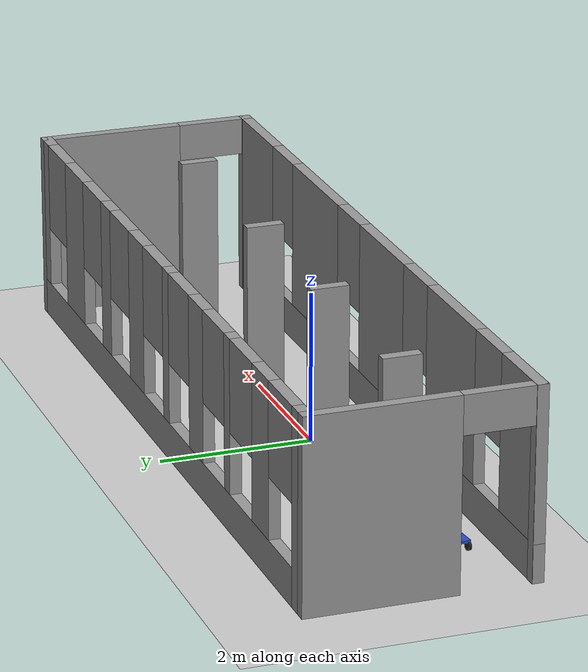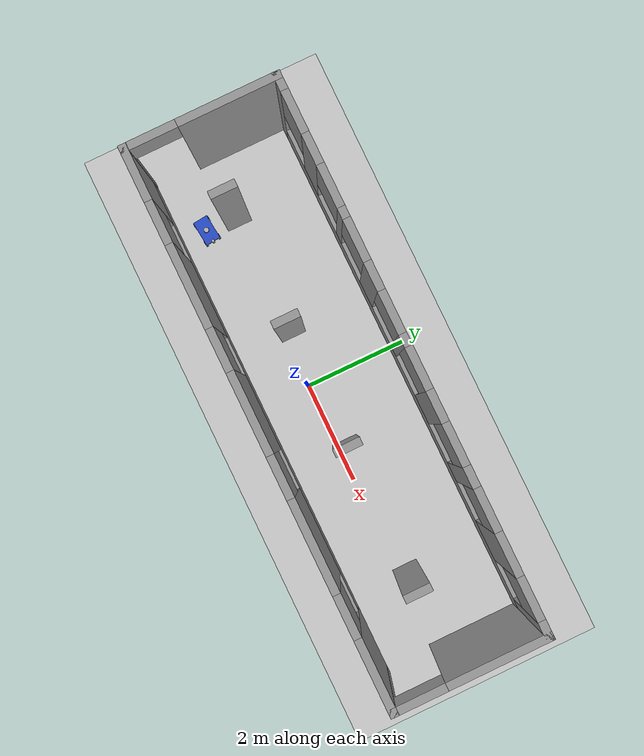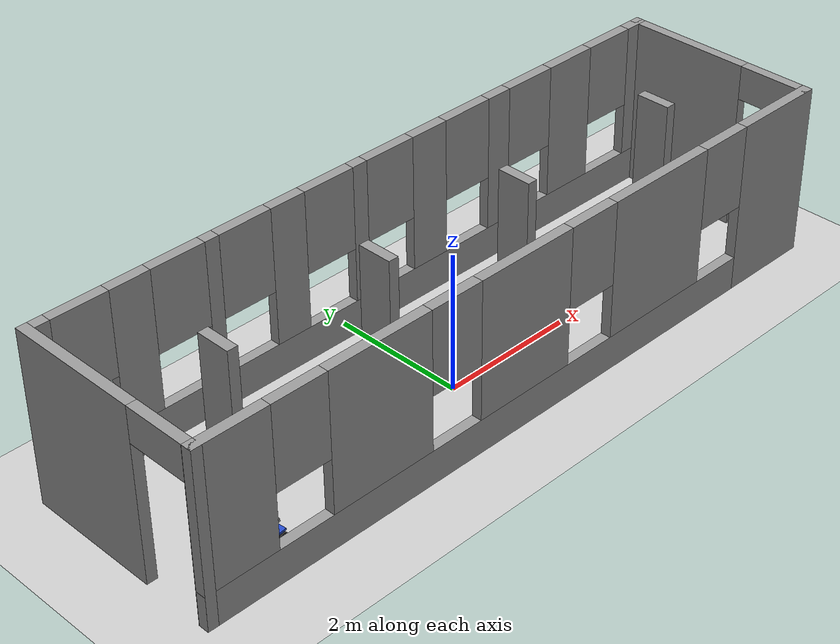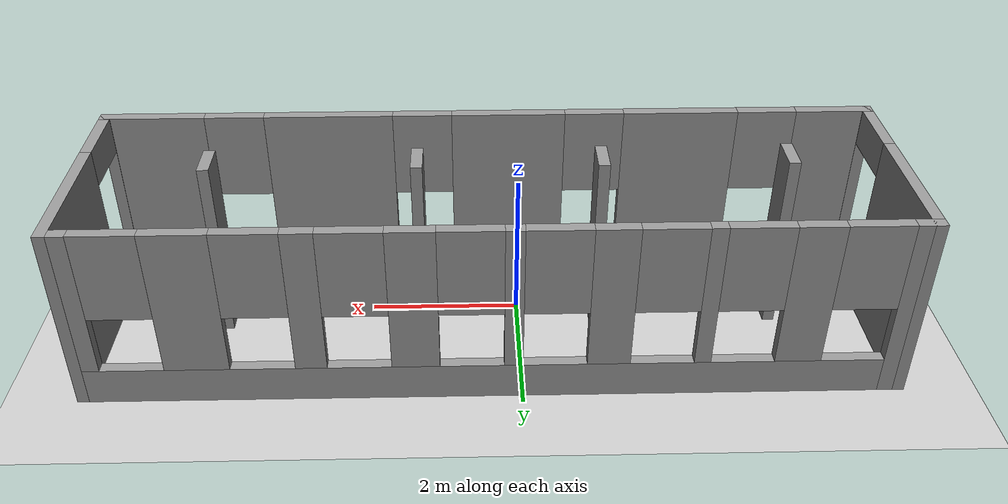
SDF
<sdf version="1.7">
 <world name="default">
  <light name="sun" type="directional">
   <pose>0 0 10 0 -0 0</pose>
   <diffuse>0.8 0.8 0.8 1</diffuse>
   <specular>0.2 0.2 0.2 1</specular>
   <attenuation>
    <range>1000</range>
    <constant>0.9</constant>
    <linear>0.01</linear>
    <quadratic>0.001</quadratic>
   </attenuation>
   <direction>-0.5 0.1 -0.9</direction>
   <spot><inner_angle>0</inner_angle><outer_angle>0</outer_angle><falloff>0</falloff></spot>
  </light>
  <model name="ground_plane">
   <static>1</static>
   <link name="link">
    <collision name="collision">
     <geometry><plane><normal>0 0 1</normal><size>100 100</size></plane></geometry>
     <surface><friction><ode><mu>100</mu><mu2>50</mu2></ode></friction></surface>
    </collision>
    <visual name="visual">
     <cast_shadows>0</cast_shadows>
     <geometry><plane><normal>0 0 1</normal><size>100 100</size></plane></geometry>
     <material>
      <script><uri>file://media/materials/scripts/gazebo.material</uri><name>Gazebo/Grey</name></script>
     </material>
    </visual>
   </link>
  </model>
  <gravity>0 0 -9.8</gravity>
  <magnetic_field>6e-06 2.3e-05 -4.2e-05</magnetic_field>
  <atmosphere type="adiabatic"/>
  <physics type="ode">
   <max_step_size>0.001</max_step_size>
   <real_time_factor>1</real_time_factor>
   <real_time_update_rate>1000</real_time_update_rate>
  </physics>
  <scene><ambient>0.4 0.4 0.4 1</ambient><background>0.7 0.7 0.7 1</background><shadows>1</shadows></scene>
  <audio><device>default</device></audio>
  <spherical_coordinates>
   <surface_model>EARTH_WGS84</surface_model>
   <latitude_deg>0</latitude_deg>
   <longitude_deg>0</longitude_deg>
   <elevation>0</elevation>
   <heading_deg>0</heading_deg>
  </spherical_coordinates>
  <model name="rover">
   <link name="base_footprint">
    <inertial>
     <pose>0.011538 0 0.048154 0 -0 0</pose>
     <mass>3.25</mass>
     <inertia>
      <ixx>0.0515339</ixx>
      <ixy>0</ixy>
      <ixz>-0.00156923</ixz>
      <iyy>0.110476</iyy>
      <iyz>0</iyz>
      <izz>0.0600523</izz>
     </inertia>
    </inertial>
    <collision name="base_footprint_fixed_joint_lump__base_link_collision">
     <pose>0 0 0.045 0 -0 0</pose>
     <geometry><box><size>0.5 0.3 0.03</size></box></geometry>
    </collision>
    <collision name="base_footprint_fixed_joint_lump__camera_link_collision_1">
     <pose>0.25 0 0.11 0 -0 0</pose>
     <geometry><box><size>0.05 0.05 0.03</size></box></geometry>
    </collision>
    <collision name="base_footprint_fixed_joint_lump__laser_link_collision_2">
     <pose>0 0 0.08 0 -0 0</pose>
     <geometry><cylinder><length>0.05</length><radius>0.05</radius></cylinder></geometry>
    </collision>
    <visual name="base_footprint_fixed_joint_lump__base_link_visual">
     <pose>0 0 0.045 0 -0 0</pose>
     <geometry><box><size>0.5 0.3 0.03</size></box></geometry>
     <material>
      <script><name>Gazebo/Blue</name><uri>file://media/materials/scripts/gazebo.material</uri></script>
     </material>
    </visual>
    <visual name="base_footprint_fixed_joint_lump__camera_mount_visual_1">
     <pose>0.25 0 0.08 0 -0 0</pose>
     <geometry><box><size>0.08 0.04 0.04</size></box></geometry>
    </visual>
    <visual name="base_footprint_fixed_joint_lump__camera_link_visual_2">
     <pose>0.25 0 0.11 0 -0 0</pose>
     <geometry><box><size>0.05 0.05 0.03</size></box></geometry>
    </visual>
    <visual name="base_footprint_fixed_joint_lump__laser_link_visual_3">
     <pose>0 0 0.08 0 -0 0</pose>
     <geometry><cylinder><length>0.05</length><radius>0.05</radius></cylinder></geometry>
    </visual>
    <sensor name="camera" type="camera">
     <update_rate>30</update_rate>
     <camera>
      <horizontal_fov>1.0472</horizontal_fov>
      <image><width>640</width><height>480</height><format>R8G8B8</format></image>
      <clip><near>0.05</near><far>100</far></clip>
      <noise><type>gaussian</type><mean>0</mean><stddev>0.007</stddev></noise>
     </camera>
     <plugin name="camera_controller" filename="libgazebo_ros_camera.so">
      <ros><namespace>/</namespace></ros>
      <camera_name>rover_camera</camera_name>
      <frame_name>camera_link</frame_name>
      <hack_baseline>0.07</hack_baseline>
     </plugin>
     <pose>0.25 0 0.11 0 -0 0</pose>
    </sensor>
    <sensor name="laser" type="ray">
     <visualize>1</visualize>
     <update_rate>20</update_rate>
     <ray>
      <scan>
       <horizontal>
        <samples>720</samples>
        <resolution>1</resolution>
        <min_angle>-0.785</min_angle>
        <max_angle>0.785</max_angle>
       </horizontal>
       <vertical><samples>1</samples><min_angle>0</min_angle><max_angle>0</max_angle></vertical>
      </scan>
      <range><min>0.1</min><max>10</max><resolution>0.01</resolution></range>
      <noise><type>gaussian</type><mean>0</mean><stddev>0.01</stddev></noise>
     </ray>
     <plugin name="gazebo_ros_laser_controller" filename="libgazebo_ros_ray_sensor.so">
      <ros><remapping>~/out:=scan</remapping></ros>
      <topicName>/scan</topicName>
      <frameName>laser_link</frameName>
      <output_type>sensor_msgs/LaserScan</output_type>
     </plugin>
     <pose>0 0 0.08 0 -0 0</pose>
    </sensor>
   </link>
   <joint name="front_left_wheel_joint" type="revolute">
    <pose relative_to="base_footprint">0.2 -0.14 -0.03 1.5708 -0 0</pose>
    <parent>base_footprint</parent>
    <child>front_left_wheel</child>
    <axis>
     <xyz>0 0 1</xyz>
     <limit><lower>-1e+16</lower><upper>1e+16</upper></limit>
     <dynamics>
      <damping>0.1</damping>
      <friction>0.5</friction>
      <spring_reference>0</spring_reference>
      <spring_stiffness>0</spring_stiffness>
     </dynamics>
    </axis>
   </joint>
   <link name="front_left_wheel">
    <pose relative_to="front_left_wheel_joint">0 0 0 0 -0 0</pose>
    <inertial>
     <mass>0.3</mass>
     <inertia><ixx>0.0008</ixx><ixy>0</ixy><ixz>0</ixz><iyy>0.0008</iyy><iyz>0</iyz><izz>0.0008</izz></inertia>
    </inertial>
    <collision name="front_left_wheel_collision">
     <geometry><cylinder><length>0.04</length><radius>0.06</radius></cylinder></geometry>
    </collision>
    <visual name="front_left_wheel_visual">
     <geometry><cylinder><length>0.04</length><radius>0.06</radius></cylinder></geometry>
     <material>
      <script><name>Gazebo/Black</name><uri>file://media/materials/scripts/gazebo.material</uri></script>
     </material>
    </visual>
   </link>
   <joint name="front_right_wheel_joint" type="revolute">
    <pose relative_to="base_footprint">0.2 0.14 -0.03 1.5708 -0 0</pose>
    <parent>base_footprint</parent>
    <child>front_right_wheel</child>
    <axis>
     <xyz>0 0 1</xyz>
     <limit><lower>-1e+16</lower><upper>1e+16</upper></limit>
     <dynamics>
      <damping>0.1</damping>
      <friction>0.5</friction>
      <spring_reference>0</spring_reference>
      <spring_stiffness>0</spring_stiffness>
     </dynamics>
    </axis>
   </joint>
   <link name="front_right_wheel">
    <pose relative_to="front_right_wheel_joint">0 0 0 0 -0 0</pose>
    <inertial>
     <mass>0.3</mass>
     <inertia><ixx>0.0008</ixx><ixy>0</ixy><ixz>0</ixz><iyy>0.0008</iyy><iyz>0</iyz><izz>0.0008</izz></inertia>
    </inertial>
    <collision name="front_right_wheel_collision">
     <geometry><cylinder><length>0.04</length><radius>0.06</radius></cylinder></geometry>
    </collision>
    <visual name="front_right_wheel_visual">
     <geometry><cylinder><length>0.04</length><radius>0.06</radius></cylinder></geometry>
     <material>
      <script><name>Gazebo/Black</name><uri>file://media/materials/scripts/gazebo.material</uri></script>
     </material>
    </visual>
   </link>
   <joint name="rear_left_wheel_joint" type="revolute">
    <pose relative_to="base_footprint">-0.2 0.14 -0.03 1.5708 -0 0</pose>
    <parent>base_footprint</parent>
    <child>rear_left_wheel</child>
    <axis>
     <xyz>0 0 1</xyz>
     <limit><lower>-1e+16</lower><upper>1e+16</upper></limit>
     <dynamics>
      <damping>0.1</damping>
      <friction>0.5</friction>
      <spring_reference>0</spring_reference>
      <spring_stiffness>0</spring_stiffness>
     </dynamics>
    </axis>
   </joint>
   <link name="rear_left_wheel">
    <pose relative_to="rear_left_wheel_joint">0 0 0 0 -0 0</pose>
    <inertial>
     <mass>0.3</mass>
     <inertia><ixx>0.0008</ixx><ixy>0</ixy><ixz>0</ixz><iyy>0.0008</iyy><iyz>0</iyz><izz>0.0008</izz></inertia>
    </inertial>
    <collision name="rear_left_wheel_collision">
     <geometry><cylinder><length>0.04</length><radius>0.06</radius></cylinder></geometry>
    </collision>
    <visual name="rear_left_wheel_visual">
     <geometry><cylinder><length>0.04</length><radius>0.06</radius></cylinder></geometry>
     <material>
      <script><name>Gazebo/Black</name><uri>file://media/materials/scripts/gazebo.material</uri></script>
     </material>
    </visual>
   </link>
   <joint name="rear_right_wheel_joint" type="revolute">
    <pose relative_to="base_footprint">-0.2 -0.14 -0.03 1.5708 -0 0</pose>
    <parent>base_footprint</parent>
    <child>rear_right_wheel</child>
    <axis>
     <xyz>0 0 1</xyz>
     <limit><lower>-1e+16</lower><upper>1e+16</upper></limit>
     <dynamics>
      <damping>0.1</damping>
      <friction>0.5</friction>
      <spring_reference>0</spring_reference>
      <spring_stiffness>0</spring_stiffness>
     </dynamics>
    </axis>
   </joint>
   <link name="rear_right_wheel">
    <pose relative_to="rear_right_wheel_joint">0 0 0 0 -0 0</pose>
    <inertial>
     <mass>0.3</mass>
     <inertia><ixx>0.0008</ixx><ixy>0</ixy><ixz>0</ixz><iyy>0.0008</iyy><iyz>0</iyz><izz>0.0008</izz></inertia>
    </inertial>
    <collision name="rear_right_wheel_collision">
     <geometry><cylinder><length>0.04</length><radius>0.06</radius></cylinder></geometry>
    </collision>
    <visual name="rear_right_wheel_visual">
     <geometry><cylinder><length>0.04</length><radius>0.06</radius></cylinder></geometry>
     <material>
      <script><name>Gazebo/Black</name><uri>file://media/materials/scripts/gazebo.material</uri></script>
     </material>
    </visual>
   </link>
   <plugin name="diff_drive_controller" filename="libgazebo_ros_diff_drive.so">
    <ros><namespace>/</namespace></ros>
    <update_rate>20.0</update_rate>
    <left_joint>front_left_wheel_joint</left_joint>
    <right_joint>front_right_wheel_joint</right_joint>
    <wheel_separation>0.4</wheel_separation>
    <wheel_diameter>0.12</wheel_diameter>
    <command_topic>cmd_vel</command_topic>
    <odometry_topic>odom</odometry_topic>
    <odometry_frame>odom</odometry_frame>
    <robot_base_frame>base_footprint</robot_base_frame>
    <publish_odom>1</publish_odom>
    <publish_odom_tf>1</publish_odom_tf>
    <publish_wheel_tf>1</publish_wheel_tf>
    <legacy_mode>0</legacy_mode>
   </plugin>
   <static>0</static>
   <plugin name="joint_state_controller" filename="libgazebo_ros_joint_state_publisher.so">
    <joint_name>front_left_wheel_joint</joint_name>
    <joint_name>front_right_wheel_joint</joint_name>
    <joint_name>rear_left_wheel_joint</joint_name>
    <joint_name>rear_right_wheel_joint</joint_name>
    <update_rate>50</update_rate>
   </plugin>
   <pose>-3.55947 -0.470713 0.09 0 -0 0.100466</pose>
  </model>
  <model name="Warehouse">
   <pose>0.37041 0.684188 0 0 -0 0</pose>
   <link name="Wall_0">
    <pose>-5.175 -0.3075 0 0 -0 1.5708</pose>
    <visual name="Wall_0_Visual_0">
     <pose>-1.42278 0 1.25 0 -0 0</pose>
     <geometry><box><size>0.154444 0.15 2.5</size></box></geometry>
     <material>
      <script><uri>file://media/materials/scripts/gazebo.material</uri><name>Gazebo/Grey</name></script>
      <ambient>1 1 1 1</ambient>
     </material>
     <meta><layer>0</layer></meta>
    </visual>
    <collision name="Wall_0_Collision_0">
     <geometry><box><size>0.154444 0.15 2.5</size></box></geometry>
     <pose>-1.42278 0 1.25 0 -0 0</pose>
    </collision>
    <visual name="Wall_0_Visual_1">
     <pose>0.527222 0 1.25 0 -0 0</pose>
     <geometry><box><size>1.94556 0.15 2.5</size></box></geometry>
     <material>
      <script><uri>file://media/materials/scripts/gazebo.material</uri><name>Gazebo/Grey</name></script>
      <ambient>1 1 1 1</ambient>
     </material>
     <meta><layer>0</layer></meta>
    </visual>
    <collision name="Wall_0_Collision_1">
     <geometry><box><size>1.94556 0.15 2.5</size></box></geometry>
     <pose>0.527222 0 1.25 0 -0 0</pose>
    </collision>
    <visual name="Wall_0_Visual_2">
     <pose>-0.895556 0 2.25 0 -0 0</pose>
     <geometry><box><size>0.9 0.15 0.5</size></box></geometry>
     <material>
      <script><uri>file://media/materials/scripts/gazebo.material</uri><name>Gazebo/Grey</name></script>
      <ambient>1 1 1 1</ambient>
     </material>
     <meta><layer>0</layer></meta>
    </visual>
    <collision name="Wall_0_Collision_2">
     <geometry><box><size>0.9 0.15 0.5</size></box></geometry>
     <pose>-0.895556 0 2.25 0 -0 0</pose>
    </collision>
   </link>
   <link name="Wall_10">
    <collision name="Wall_10_Collision">
     <geometry><box><size>0.5 0.15 2.5</size></box></geometry>
     <pose>0 0 1.25 0 -0 0</pose>
    </collision>
    <visual name="Wall_10_Visual">
     <pose>0 0 1.25 0 -0 0</pose>
     <geometry><box><size>0.5 0.15 2.5</size></box></geometry>
     <material>
      <script><uri>file://media/materials/scripts/gazebo.material</uri><name>Gazebo/Grey</name></script>
      <ambient>1 1 1 1</ambient>
     </material>
     <meta><layer>0</layer></meta>
    </visual>
    <pose>-1.43035 -0.523709 0 0 -0 1.5708</pose>
   </link>
   <link name="Wall_12">
    <collision name="Wall_12_Collision">
     <geometry><box><size>0.5 0.15 2.5</size></box></geometry>
     <pose>0 0 1.25 0 -0 0</pose>
    </collision>
    <visual name="Wall_12_Visual">
     <pose>0 0 1.25 0 -0 0</pose>
     <geometry><box><size>0.5 0.15 2.5</size></box></geometry>
     <material>
      <script><uri>file://media/materials/scripts/gazebo.material</uri><name>Gazebo/Grey</name></script>
      <ambient>1 1 1 1</ambient>
     </material>
     <meta><layer>0</layer></meta>
    </visual>
    <pose>0.934869 -0.515013 0 0 -0 1.5708</pose>
   </link>
   <link name="Wall_15">
    <collision name="Wall_15_Collision">
     <geometry><box><size>0.5 0.15 2.5</size></box></geometry>
     <pose>0 0 1.25 0 -0 0</pose>
    </collision>
    <visual name="Wall_15_Visual">
     <pose>0 0 1.25 0 -0 0</pose>
     <geometry><box><size>0.5 0.15 2.5</size></box></geometry>
     <material>
      <script><uri>file://media/materials/scripts/gazebo.material</uri><name>Gazebo/Grey</name></script>
      <ambient>1 1 1 1</ambient>
     </material>
     <meta><layer>0</layer></meta>
    </visual>
    <pose>3.59574 -0.515013 0 0 -0 1.5708</pose>
   </link>
   <link name="Wall_2">
    <pose>-0 1.1175 0 0 -0 0</pose>
    <visual name="Wall_2_Visual_0">
     <pose>-5.07496 0 1.25 0 -0 0</pose>
     <geometry><box><size>0.350087 0.15 2.5</size></box></geometry>
     <material>
      <script><uri>file://media/materials/scripts/gazebo.material</uri><name>Gazebo/Grey</name></script>
      <ambient>1 1 1 1</ambient>
     </material>
     <meta><layer>0</layer></meta>
    </visual>
    <collision name="Wall_2_Collision_0">
     <geometry><box><size>0.350087 0.15 2.5</size></box></geometry>
     <pose>-5.07496 0 1.25 0 -0 0</pose>
    </collision>
    <visual name="Wall_2_Visual_1">
     <pose>0.175043 0 0.25 0 -0 0</pose>
     <geometry><box><size>10.1499 0.15 0.5</size></box></geometry>
     <material>
      <script><uri>file://media/materials/scripts/gazebo.material</uri><name>Gazebo/Grey</name></script>
      <ambient>1 1 1 1</ambient>
     </material>
     <meta><layer>0</layer></meta>
    </visual>
    <collision name="Wall_2_Collision_1">
     <geometry><box><size>10.1499 0.15 0.5</size></box></geometry>
     <pose>0.175043 0 0.25 0 -0 0</pose>
    </collision>
    <visual name="Wall_2_Visual_2">
     <pose>-3.80861 0 1.5 0 -0 0</pose>
     <geometry><box><size>0.582609 0.15 2</size></box></geometry>
     <material>
      <script><uri>file://media/materials/scripts/gazebo.material</uri><name>Gazebo/Grey</name></script>
      <ambient>1 1 1 1</ambient>
     </material>
     <meta><layer>0</layer></meta>
    </visual>
    <collision name="Wall_2_Collision_2">
     <geometry><box><size>0.582609 0.15 2</size></box></geometry>
     <pose>-3.80861 0 1.5 0 -0 0</pose>
    </collision>
    <visual name="Wall_2_Visual_3">
     <pose>-2.61296 0 1.5 0 -0 0</pose>
     <geometry><box><size>0.208696 0.15 2</size></box></geometry>
     <material>
      <script><uri>file://media/materials/scripts/gazebo.material</uri><name>Gazebo/Grey</name></script>
      <ambient>1 1 1 1</ambient>
     </material>
     <meta><layer>0</layer></meta>
    </visual>
    <collision name="Wall_2_Collision_3">
     <geometry><box><size>0.208696 0.15 2</size></box></geometry>
     <pose>-2.61296 0 1.5 0 -0 0</pose>
    </collision>
    <visual name="Wall_2_Visual_4">
     <pose>-1.43904 0 1.5 0 -0 0</pose>
     <geometry><box><size>0.53913 0.15 2</size></box></geometry>
     <material>
      <script><uri>file://media/materials/scripts/gazebo.material</uri><name>Gazebo/Grey</name></script>
      <ambient>1 1 1 1</ambient>
     </material>
     <meta><layer>0</layer></meta>
    </visual>
    <collision name="Wall_2_Collision_4">
     <geometry><box><size>0.53913 0.15 2</size></box></geometry>
     <pose>-1.43904 0 1.5 0 -0 0</pose>
    </collision>
    <visual name="Wall_2_Visual_5">
     <pose>-0.252087 0 1.5 0 -0 0</pose>
     <geometry><box><size>0.234783 0.15 2</size></box></geometry>
     <material>
      <script><uri>file://media/materials/scripts/gazebo.material</uri><name>Gazebo/Grey</name></script>
      <ambient>1 1 1 1</ambient>
     </material>
     <meta><layer>0</layer></meta>
    </visual>
    <collision name="Wall_2_Collision_5">
     <geometry><box><size>0.234783 0.15 2</size></box></geometry>
     <pose>-0.252087 0 1.5 0 -0 0</pose>
    </collision>
    <visual name="Wall_2_Visual_6">
     <pose>0.965304 0 1.5 0 -0 0</pose>
     <geometry><box><size>0.6 0.15 2</size></box></geometry>
     <material>
      <script><uri>file://media/materials/scripts/gazebo.material</uri><name>Gazebo/Grey</name></script>
      <ambient>1 1 1 1</ambient>
     </material>
     <meta><layer>0</layer></meta>
    </visual>
    <collision name="Wall_2_Collision_6">
     <geometry><box><size>0.6 0.15 2</size></box></geometry>
     <pose>0.965304 0 1.5 0 -0 0</pose>
    </collision>
    <visual name="Wall_2_Visual_7">
     <pose>2.26313 0 1.5 0 -0 0</pose>
     <geometry><box><size>0.395652 0.15 2</size></box></geometry>
     <material>
      <script><uri>file://media/materials/scripts/gazebo.material</uri><name>Gazebo/Grey</name></script>
      <ambient>1 1 1 1</ambient>
     </material>
     <meta><layer>0</layer></meta>
    </visual>
    <collision name="Wall_2_Collision_7">
     <geometry><box><size>0.395652 0.15 2</size></box></geometry>
     <pose>2.26313 0 1.5 0 -0 0</pose>
    </collision>
    <visual name="Wall_2_Visual_8">
     <pose>3.67617 0 1.5 0 -0 0</pose>
     <geometry><box><size>0.813044 0.15 2</size></box></geometry>
     <material>
      <script><uri>file://media/materials/scripts/gazebo.material</uri><name>Gazebo/Grey</name></script>
      <ambient>1 1 1 1</ambient>
     </material>
     <meta><layer>0</layer></meta>
    </visual>
    <collision name="Wall_2_Collision_8">
     <geometry><box><size>0.813044 0.15 2</size></box></geometry>
     <pose>3.67617 0 1.5 0 -0 0</pose>
    </collision>
    <visual name="Wall_2_Visual_9">
     <pose>5.06635 0 1.5 0 -0 0</pose>
     <geometry><box><size>0.367305 0.15 2</size></box></geometry>
     <material>
      <script><uri>file://media/materials/scripts/gazebo.material</uri><name>Gazebo/Grey</name></script>
      <ambient>1 1 1 1</ambient>
     </material>
     <meta><layer>0</layer></meta>
    </visual>
    <collision name="Wall_2_Collision_9">
     <geometry><box><size>0.367305 0.15 2</size></box></geometry>
     <pose>5.06635 0 1.5 0 -0 0</pose>
    </collision>
    <visual name="Wall_2_Visual_10">
     <pose>-4.49991 0 1.9 0 -0 0</pose>
     <geometry><box><size>0.8 0.15 1.2</size></box></geometry>
     <material>
      <script><uri>file://media/materials/scripts/gazebo.material</uri><name>Gazebo/Grey</name></script>
      <ambient>1 1 1 1</ambient>
     </material>
     <meta><layer>0</layer></meta>
    </visual>
    <collision name="Wall_2_Collision_10">
     <geometry><box><size>0.8 0.15 1.2</size></box></geometry>
     <pose>-4.49991 0 1.9 0 -0 0</pose>
    </collision>
    <visual name="Wall_2_Visual_11">
     <pose>-3.1173 0 1.9 0 -0 0</pose>
     <geometry><box><size>0.8 0.15 1.2</size></box></geometry>
     <material>
      <script><uri>file://media/materials/scripts/gazebo.material</uri><name>Gazebo/Grey</name></script>
      <ambient>1 1 1 1</ambient>
     </material>
     <meta><layer>0</layer></meta>
    </visual>
    <collision name="Wall_2_Collision_11">
     <geometry><box><size>0.8 0.15 1.2</size></box></geometry>
     <pose>-3.1173 0 1.9 0 -0 0</pose>
    </collision>
    <visual name="Wall_2_Visual_12">
     <pose>-2.10861 0 1.9 0 -0 0</pose>
     <geometry><box><size>0.8 0.15 1.2</size></box></geometry>
     <material>
      <script><uri>file://media/materials/scripts/gazebo.material</uri><name>Gazebo/Grey</name></script>
      <ambient>1 1 1 1</ambient>
     </material>
     <meta><layer>0</layer></meta>
    </visual>
    <collision name="Wall_2_Collision_12">
     <geometry><box><size>0.8 0.15 1.2</size></box></geometry>
     <pose>-2.10861 0 1.9 0 -0 0</pose>
    </collision>
    <visual name="Wall_2_Visual_13">
     <pose>-0.769478 0 1.9 0 -0 0</pose>
     <geometry><box><size>0.8 0.15 1.2</size></box></geometry>
     <material>
      <script><uri>file://media/materials/scripts/gazebo.material</uri><name>Gazebo/Grey</name></script>
      <ambient>1 1 1 1</ambient>
     </material>
     <meta><layer>0</layer></meta>
    </visual>
    <collision name="Wall_2_Collision_13">
     <geometry><box><size>0.8 0.15 1.2</size></box></geometry>
     <pose>-0.769478 0 1.9 0 -0 0</pose>
    </collision>
    <visual name="Wall_2_Visual_14">
     <pose>0.265304 0 1.9 0 -0 0</pose>
     <geometry><box><size>0.8 0.15 1.2</size></box></geometry>
     <material>
      <script><uri>file://media/materials/scripts/gazebo.material</uri><name>Gazebo/Grey</name></script>
      <ambient>1 1 1 1</ambient>
     </material>
     <meta><layer>0</layer></meta>
    </visual>
    <collision name="Wall_2_Collision_14">
     <geometry><box><size>0.8 0.15 1.2</size></box></geometry>
     <pose>0.265304 0 1.9 0 -0 0</pose>
    </collision>
    <visual name="Wall_2_Visual_15">
     <pose>1.6653 0 1.9 0 -0 0</pose>
     <geometry><box><size>0.8 0.15 1.2</size></box></geometry>
     <material>
      <script><uri>file://media/materials/scripts/gazebo.material</uri><name>Gazebo/Grey</name></script>
      <ambient>1 1 1 1</ambient>
     </material>
     <meta><layer>0</layer></meta>
    </visual>
    <collision name="Wall_2_Collision_15">
     <geometry><box><size>0.8 0.15 1.2</size></box></geometry>
     <pose>1.6653 0 1.9 0 -0 0</pose>
    </collision>
    <visual name="Wall_2_Visual_16">
     <pose>2.8653 0 1.9 0 -0 0</pose>
     <geometry><box><size>0.808696 0.15 1.2</size></box></geometry>
     <material>
      <script><uri>file://media/materials/scripts/gazebo.material</uri><name>Gazebo/Grey</name></script>
      <ambient>1 1 1 1</ambient>
     </material>
     <meta><layer>0</layer></meta>
    </visual>
    <collision name="Wall_2_Collision_16">
     <geometry><box><size>0.808696 0.15 1.2</size></box></geometry>
     <pose>2.8653 0 1.9 0 -0 0</pose>
    </collision>
    <visual name="Wall_2_Visual_17">
     <pose>4.48269 0 1.9 0 -0 0</pose>
     <geometry><box><size>0.8 0.15 1.2</size></box></geometry>
     <material>
      <script><uri>file://media/materials/scripts/gazebo.material</uri><name>Gazebo/Grey</name></script>
      <ambient>1 1 1 1</ambient>
     </material>
     <meta><layer>0</layer></meta>
    </visual>
    <collision name="Wall_2_Collision_17">
     <geometry><box><size>0.8 0.15 1.2</size></box></geometry>
     <pose>4.48269 0 1.9 0 -0 0</pose>
    </collision>
   </link>
   <link name="Wall_3">
    <pose>5.175 -0.3075 0 0 -0 -1.5708</pose>
    <visual name="Wall_3_Visual_0">
     <pose>-0.527222 0 1.25 0 -0 0</pose>
     <geometry><box><size>1.94556 0.15 2.5</size></box></geometry>
     <material>
      <script><uri>file://media/materials/scripts/gazebo.material</uri><name>Gazebo/Grey</name></script>
      <ambient>1 1 1 1</ambient>
     </material>
     <meta><layer>0</layer></meta>
    </visual>
    <collision name="Wall_3_Collision_0">
     <geometry><box><size>1.94556 0.15 2.5</size></box></geometry>
     <pose>-0.527222 0 1.25 0 -0 0</pose>
    </collision>
    <visual name="Wall_3_Visual_1">
     <pose>1.42278 0 1.25 0 -0 0</pose>
     <geometry><box><size>0.154444 0.15 2.5</size></box></geometry>
     <material>
      <script><uri>file://media/materials/scripts/gazebo.material</uri><name>Gazebo/Grey</name></script>
      <ambient>1 1 1 1</ambient>
     </material>
     <meta><layer>0</layer></meta>
    </visual>
    <collision name="Wall_3_Collision_1">
     <geometry><box><size>0.154444 0.15 2.5</size></box></geometry>
     <pose>1.42278 0 1.25 0 -0 0</pose>
    </collision>
    <visual name="Wall_3_Visual_2">
     <pose>0.895556 0 2.25 0 -0 0</pose>
     <geometry><box><size>0.9 0.15 0.5</size></box></geometry>
     <material>
      <script><uri>file://media/materials/scripts/gazebo.material</uri><name>Gazebo/Grey</name></script>
      <ambient>1 1 1 1</ambient>
     </material>
     <meta><layer>0</layer></meta>
    </visual>
    <collision name="Wall_3_Collision_2">
     <geometry><box><size>0.9 0.15 0.5</size></box></geometry>
     <pose>0.895556 0 2.25 0 -0 0</pose>
    </collision>
   </link>
   <link name="Wall_4">
    <pose>-0 -1.7325 0 0 -0 3.14159</pose>
    <visual name="Wall_4_Visual_0">
     <pose>-4.54461 0 1.25 0 -0 0</pose>
     <geometry><box><size>1.41078 0.15 2.5</size></box></geometry>
     <material>
      <script><uri>file://media/materials/scripts/gazebo.material</uri><name>Gazebo/Grey</name></script>
      <ambient>1 1 1 1</ambient>
     </material>
     <meta><layer>0</layer></meta>
    </visual>
    <collision name="Wall_4_Collision_0">
     <geometry><box><size>1.41078 0.15 2.5</size></box></geometry>
     <pose>-4.54461 0 1.25 0 -0 0</pose>
    </collision>
    <visual name="Wall_4_Visual_1">
     <pose>0.705391 0 0.25 0 -0 0</pose>
     <geometry><box><size>9.08922 0.15 0.5</size></box></geometry>
     <material>
      <script><uri>file://media/materials/scripts/gazebo.material</uri><name>Gazebo/Grey</name></script>
      <ambient>1 1 1 1</ambient>
     </material>
     <meta><layer>0</layer></meta>
    </visual>
    <collision name="Wall_4_Collision_1">
     <geometry><box><size>9.08922 0.15 0.5</size></box></geometry>
     <pose>0.705391 0 0.25 0 -0 0</pose>
    </collision>
    <visual name="Wall_4_Visual_2">
     <pose>-2.16965 0 1.5 0 -0 0</pose>
     <geometry><box><size>1.73913 0.15 2</size></box></geometry>
     <material>
      <script><uri>file://media/materials/scripts/gazebo.material</uri><name>Gazebo/Grey</name></script>
      <ambient>1 1 1 1</ambient>
     </material>
     <meta><layer>0</layer></meta>
    </visual>
    <collision name="Wall_4_Collision_2">
     <geometry><box><size>1.73913 0.15 2</size></box></geometry>
     <pose>-2.16965 0 1.5 0 -0 0</pose>
    </collision>
    <visual name="Wall_4_Visual_3">
     <pose>0.269478 0 1.5 0 -0 0</pose>
     <geometry><box><size>1.53913 0.15 2</size></box></geometry>
     <material>
      <script><uri>file://media/materials/scripts/gazebo.material</uri><name>Gazebo/Grey</name></script>
      <ambient>1 1 1 1</ambient>
     </material>
     <meta><layer>0</layer></meta>
    </visual>
    <collision name="Wall_4_Collision_3">
     <geometry><box><size>1.53913 0.15 2</size></box></geometry>
     <pose>0.269478 0 1.5 0 -0 0</pose>
    </collision>
    <visual name="Wall_4_Visual_4">
     <pose>2.6173 0 1.5 0 -0 0</pose>
     <geometry><box><size>1.55652 0.15 2</size></box></geometry>
     <material>
      <script><uri>file://media/materials/scripts/gazebo.material</uri><name>Gazebo/Grey</name></script>
      <ambient>1 1 1 1</ambient>
     </material>
     <meta><layer>0</layer></meta>
    </visual>
    <collision name="Wall_4_Collision_4">
     <geometry><box><size>1.55652 0.15 2</size></box></geometry>
     <pose>2.6173 0 1.5 0 -0 0</pose>
    </collision>
    <visual name="Wall_4_Visual_5">
     <pose>4.72278 0 1.5 0 -0 0</pose>
     <geometry><box><size>1.05444 0.15 2</size></box></geometry>
     <material>
      <script><uri>file://media/materials/scripts/gazebo.material</uri><name>Gazebo/Grey</name></script>
      <ambient>1 1 1 1</ambient>
     </material>
     <meta><layer>0</layer></meta>
    </visual>
    <collision name="Wall_4_Collision_5">
     <geometry><box><size>1.05444 0.15 2</size></box></geometry>
     <pose>4.72278 0 1.5 0 -0 0</pose>
    </collision>
    <visual name="Wall_4_Visual_6">
     <pose>-3.43922 0 1.9 0 -0 0</pose>
     <geometry><box><size>0.8 0.15 1.2</size></box></geometry>
     <material>
      <script><uri>file://media/materials/scripts/gazebo.material</uri><name>Gazebo/Grey</name></script>
      <ambient>1 1 1 1</ambient>
     </material>
     <meta><layer>0</layer></meta>
    </visual>
    <collision name="Wall_4_Collision_6">
     <geometry><box><size>0.8 0.15 1.2</size></box></geometry>
     <pose>-3.43922 0 1.9 0 -0 0</pose>
    </collision>
    <visual name="Wall_4_Visual_7">
     <pose>-0.900087 0 1.9 0 -0 0</pose>
     <geometry><box><size>0.8 0.15 1.2</size></box></geometry>
     <material>
      <script><uri>file://media/materials/scripts/gazebo.material</uri><name>Gazebo/Grey</name></script>
      <ambient>1 1 1 1</ambient>
     </material>
     <meta><layer>0</layer></meta>
    </visual>
    <collision name="Wall_4_Collision_7">
     <geometry><box><size>0.8 0.15 1.2</size></box></geometry>
     <pose>-0.900087 0 1.9 0 -0 0</pose>
    </collision>
    <visual name="Wall_4_Visual_8">
     <pose>1.43904 0 1.9 0 -0 0</pose>
     <geometry><box><size>0.8 0.15 1.2</size></box></geometry>
     <material>
      <script><uri>file://media/materials/scripts/gazebo.material</uri><name>Gazebo/Grey</name></script>
      <ambient>1 1 1 1</ambient>
     </material>
     <meta><layer>0</layer></meta>
    </visual>
    <collision name="Wall_4_Collision_8">
     <geometry><box><size>0.8 0.15 1.2</size></box></geometry>
     <pose>1.43904 0 1.9 0 -0 0</pose>
    </collision>
    <visual name="Wall_4_Visual_9">
     <pose>3.79556 0 1.9 0 -0 0</pose>
     <geometry><box><size>0.8 0.15 1.2</size></box></geometry>
     <material>
      <script><uri>file://media/materials/scripts/gazebo.material</uri><name>Gazebo/Grey</name></script>
      <ambient>1 1 1 1</ambient>
     </material>
     <meta><layer>0</layer></meta>
    </visual>
    <collision name="Wall_4_Collision_9">
     <geometry><box><size>0.8 0.15 1.2</size></box></geometry>
     <pose>3.79556 0 1.9 0 -0 0</pose>
    </collision>
   </link>
   <link name="Wall_8">
    <collision name="Wall_8_Collision">
     <geometry><box><size>0.5 0.15 2.5</size></box></geometry>
     <pose>0 0 1.25 0 -0 0</pose>
    </collision>
    <visual name="Wall_8_Visual">
     <pose>0 0 1.25 0 -0 0</pose>
     <geometry><box><size>0.5 0.15 2.5</size></box></geometry>
     <material>
      <script><uri>file://media/materials/scripts/gazebo.material</uri><name>Gazebo/Grey</name></script>
      <ambient>1 1 1 1</ambient>
     </material>
     <meta><layer>0</layer></meta>
    </visual>
    <pose>-3.83904 -0.532404 0 0 -0 1.5708</pose>
   </link>
   <static>1</static>
  </model>
 </world>
</sdf>
